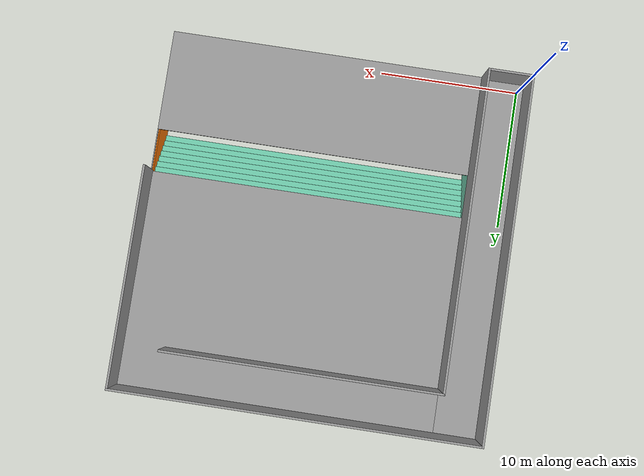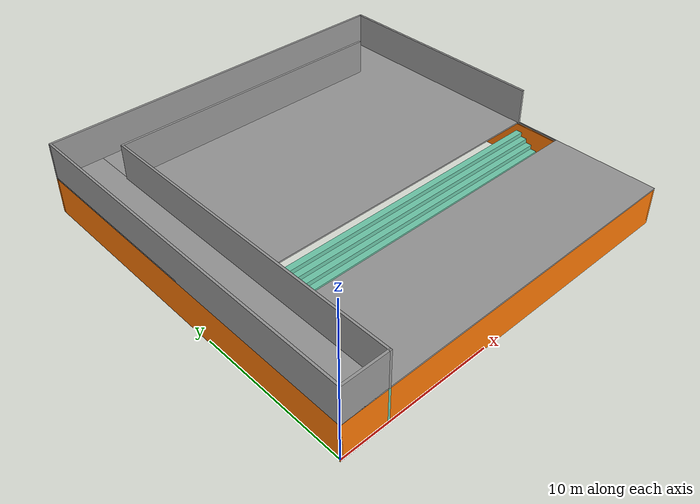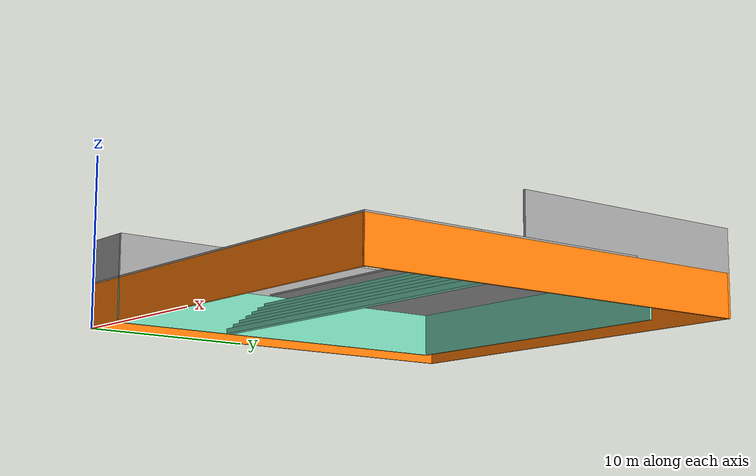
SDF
<?xml version='1.0'?>
<sdf version='1.7'>
  <model name='smart_house'>
    <pose>12.5 12.5 0 0 -0 0</pose>
    <link name='Floor_3'>
      <pose>0 0 2.5 0 -0 0</pose>
      <visual name='Floor_3_Visual_0'>
        <pose>-11.0375 0 0.05 0 -0 0</pose>
        <geometry>
          <box>
            <size>3.075 25.15 0.1</size>
          </box>
        </geometry>
        <material>
          <script>
            <uri>file://media/materials/scripts/gazebo.material</uri>
            <name>Gazebo/Grey</name>
          </script>
          <ambient>1 1 1 1</ambient>
        </material>
        <meta>
          <layer>1</layer>
        </meta>
      </visual>
      <collision name='Floor_3_Collision_0'>
        <geometry>
          <box>
            <size>3.075 25.15 0.1</size>
          </box>
        </geometry>
        <pose>-11.0375 0 0.05 0 -0 0</pose>
      </collision>
      <visual name='Floor_3_Visual_1'>
        <pose>1.5375 -9.0375 0.05 0 -0 0</pose>
        <geometry>
          <box>
            <size>22.075 7.075 0.1</size>
          </box>
        </geometry>
        <material>
          <script>
            <uri>file://media/materials/scripts/gazebo.material</uri>
            <name>Gazebo/Grey</name>
          </script>
          <ambient>1 1 1 1</ambient>
        </material>
        <meta>
          <layer>1</layer>
        </meta>
      </visual>
      <collision name='Floor_3_Collision_1'>
        <geometry>
          <box>
            <size>22.075 7.075 0.1</size>
          </box>
        </geometry>
        <pose>1.5375 -9.0375 0.05 0 -0 0</pose>
      </collision>
      <visual name='Floor_3_Visual_2'>
        <pose>12.5375 3.5375 0.05 0 -0 0</pose>
        <geometry>
          <box>
            <size>0.075 18.075 0.1</size>
          </box>
        </geometry>
        <material>
          <script>
            <uri>file://media/materials/scripts/gazebo.material</uri>
            <name>Gazebo/Grey</name>
          </script>
          <ambient>1 1 1 1</ambient>
        </material>
        <meta>
          <layer>1</layer>
        </meta>
      </visual>
      <collision name='Floor_3_Collision_2'>
        <geometry>
          <box>
            <size>0.075 18.075 0.1</size>
          </box>
        </geometry>
        <pose>12.5375 3.5375 0.05 0 -0 0</pose>
      </collision>
      <visual name='Floor_3_Visual_3'>
        <pose>1.5 5.0375 0.05 0 -0 0</pose>
        <geometry>
          <box>
            <size>22 15.075 0.1</size>
          </box>
        </geometry>
        <material>
          <script>
            <uri>file://media/materials/scripts/gazebo.material</uri>
            <name>Gazebo/Grey</name>
          </script>
          <ambient>1 1 1 1</ambient>
        </material>
        <meta>
          <layer>1</layer>
        </meta>
      </visual>
      <collision name='Floor_3_Collision_3'>
        <geometry>
          <box>
            <size>22 15.075 0.1</size>
          </box>
        </geometry>
        <pose>1.5 5.0375 0.05 0 -0 0</pose>
      </collision>
    </link>
    <link name='Stairs_1'>
      <visual name='Stairs_1_Visual_0'>
        <pose>1.5 -5.28571 0.142857 0 0 -3.14159</pose>
        <geometry>
          <box>
            <size>22 0.428571 0.285714</size>
          </box>
        </geometry>
        <material>
          <script>
            <uri>file://media/materials/scripts/gazebo.material</uri>
            <name>Gazebo/Grey</name>
          </script>
          <ambient>0.435294 0.796078 0.67451 1</ambient>
        </material>
        <meta>
          <layer>0</layer>
        </meta>
      </visual>
      <collision name='Stairs_1_Collision_0'>
        <geometry>
          <box>
            <size>22 0.428571 0.285714</size>
          </box>
        </geometry>
        <pose>1.5 -5.28571 0.142857 0 0 -3.14159</pose>
      </collision>
      <visual name='Stairs_1_Visual_1'>
        <pose>1.5 -4.85714 0.428571 0 0 -3.14159</pose>
        <geometry>
          <box>
            <size>22 0.428571 0.285714</size>
          </box>
        </geometry>
        <material>
          <script>
            <uri>file://media/materials/scripts/gazebo.material</uri>
            <name>Gazebo/Grey</name>
          </script>
          <ambient>0.435294 0.796078 0.67451 1</ambient>
        </material>
        <meta>
          <layer>0</layer>
        </meta>
      </visual>
      <collision name='Stairs_1_Collision_1'>
        <geometry>
          <box>
            <size>22 0.428571 0.285714</size>
          </box>
        </geometry>
        <pose>1.5 -4.85714 0.428571 0 0 -3.14159</pose>
      </collision>
      <visual name='Stairs_1_Visual_2'>
        <pose>1.5 -4.42857 0.714286 0 0 -3.14159</pose>
        <geometry>
          <box>
            <size>22 0.428571 0.285714</size>
          </box>
        </geometry>
        <material>
          <script>
            <uri>file://media/materials/scripts/gazebo.material</uri>
            <name>Gazebo/Grey</name>
          </script>
          <ambient>0.435294 0.796078 0.67451 1</ambient>
        </material>
        <meta>
          <layer>0</layer>
        </meta>
      </visual>
      <collision name='Stairs_1_Collision_2'>
        <geometry>
          <box>
            <size>22 0.428571 0.285714</size>
          </box>
        </geometry>
        <pose>1.5 -4.42857 0.714286 0 0 -3.14159</pose>
      </collision>
      <visual name='Stairs_1_Visual_3'>
        <pose>1.5 -4 1 0 0 -3.14159</pose>
        <geometry>
          <box>
            <size>22 0.428571 0.285714</size>
          </box>
        </geometry>
        <material>
          <script>
            <uri>file://media/materials/scripts/gazebo.material</uri>
            <name>Gazebo/Grey</name>
          </script>
          <ambient>0.435294 0.796078 0.67451 1</ambient>
        </material>
        <meta>
          <layer>0</layer>
        </meta>
      </visual>
      <collision name='Stairs_1_Collision_3'>
        <geometry>
          <box>
            <size>22 0.428571 0.285714</size>
          </box>
        </geometry>
        <pose>1.5 -4 1 0 0 -3.14159</pose>
      </collision>
      <visual name='Stairs_1_Visual_4'>
        <pose>1.5 -3.57143 1.28571 0 0 -3.14159</pose>
        <geometry>
          <box>
            <size>22 0.428571 0.285714</size>
          </box>
        </geometry>
        <material>
          <script>
            <uri>file://media/materials/scripts/gazebo.material</uri>
            <name>Gazebo/Grey</name>
          </script>
          <ambient>0.435294 0.796078 0.67451 1</ambient>
        </material>
        <meta>
          <layer>0</layer>
        </meta>
      </visual>
      <collision name='Stairs_1_Collision_4'>
        <geometry>
          <box>
            <size>22 0.428571 0.285714</size>
          </box>
        </geometry>
        <pose>1.5 -3.57143 1.28571 0 0 -3.14159</pose>
      </collision>
      <visual name='Stairs_1_Visual_5'>
        <pose>1.5 -3.14286 1.57143 0 0 -3.14159</pose>
        <geometry>
          <box>
            <size>22 0.428571 0.285714</size>
          </box>
        </geometry>
        <material>
          <script>
            <uri>file://media/materials/scripts/gazebo.material</uri>
            <name>Gazebo/Grey</name>
          </script>
          <ambient>0.435294 0.796078 0.67451 1</ambient>
        </material>
        <meta>
          <layer>0</layer>
        </meta>
      </visual>
      <collision name='Stairs_1_Collision_5'>
        <geometry>
          <box>
            <size>22 0.428571 0.285714</size>
          </box>
        </geometry>
        <pose>1.5 -3.14286 1.57143 0 0 -3.14159</pose>
      </collision>
      <visual name='Stairs_1_Visual_6'>
        <pose>1.5 -2.71428 1.85714 0 0 -3.14159</pose>
        <geometry>
          <box>
            <size>22 0.428571 0.285714</size>
          </box>
        </geometry>
        <material>
          <script>
            <uri>file://media/materials/scripts/gazebo.material</uri>
            <name>Gazebo/Grey</name>
          </script>
          <ambient>0.435294 0.796078 0.67451 1</ambient>
        </material>
        <meta>
          <layer>0</layer>
        </meta>
      </visual>
      <collision name='Stairs_1_Collision_6'>
        <geometry>
          <box>
            <size>22 0.428571 0.285714</size>
          </box>
        </geometry>
        <pose>1.5 -2.71428 1.85714 0 0 -3.14159</pose>
      </collision>
    </link>
    <link name='Wall_0'>
      <collision name='Wall_0_Collision'>
        <geometry>
          <box>
            <size>25.15 0.15 2.5</size>
          </box>
        </geometry>
        <pose>0 0 1.25 0 -0 0</pose>
      </collision>
      <visual name='Wall_0_Visual'>
        <pose>0 0 1.25 0 -0 0</pose>
        <geometry>
          <box>
            <size>25.15 0.15 2.5</size>
          </box>
        </geometry>
        <material>
          <script>
            <uri>file://media/materials/scripts/gazebo.material</uri>
            <name>Gazebo/Grey</name>
          </script>
          <ambient>0.996078 0.47451 0.0196078 1</ambient>
        </material>
        <meta>
          <layer>0</layer>
        </meta>
      </visual>
      <pose>0 -12.5 0 0 -0 0</pose>
    </link>
    <link name='Wall_1'>
      <collision name='Wall_1_Collision'>
        <geometry>
          <box>
            <size>25.15 0.15 2.5</size>
          </box>
        </geometry>
        <pose>0 0 1.25 0 -0 0</pose>
      </collision>
      <visual name='Wall_1_Visual'>
        <pose>0 0 1.25 0 -0 0</pose>
        <geometry>
          <box>
            <size>25.15 0.15 2.5</size>
          </box>
        </geometry>
        <material>
          <script>
            <uri>file://media/materials/scripts/gazebo.material</uri>
            <name>Gazebo/Grey</name>
          </script>
          <ambient>0.996078 0.47451 0.0196078 1</ambient>
        </material>
        <meta>
          <layer>0</layer>
        </meta>
      </visual>
      <pose>12.5 0 0 0 -0 1.5708</pose>
    </link>
    <link name='Wall_13'>
      <collision name='Wall_13_Collision'>
        <geometry>
          <box>
            <size>22.15 0.15 2.5</size>
          </box>
        </geometry>
        <pose>0 0 1.25 0 -0 0</pose>
      </collision>
      <visual name='Wall_13_Visual'>
        <pose>0 0 1.25 0 -0 0</pose>
        <geometry>
          <box>
            <size>22.15 0.15 2.5</size>
          </box>
        </geometry>
        <material>
          <script>
            <uri>file://media/materials/scripts/gazebo.material</uri>
            <name>Gazebo/Grey</name>
          </script>
          <ambient>0.435294 0.796078 0.67451 1</ambient>
        </material>
        <meta>
          <layer>0</layer>
        </meta>
      </visual>
      <pose>-9.5 -1.5 0 0 -0 1.5708</pose>
    </link>
    <link name='Wall_14'>
      <collision name='Wall_14_Collision'>
        <geometry>
          <box>
            <size>19.15 0.15 2.5</size>
          </box>
        </geometry>
        <pose>0 0 1.25 0 -0 0</pose>
      </collision>
      <visual name='Wall_14_Visual'>
        <pose>0 0 1.25 0 -0 0</pose>
        <geometry>
          <box>
            <size>19.15 0.15 2.5</size>
          </box>
        </geometry>
        <material>
          <script>
            <uri>file://media/materials/scripts/gazebo.material</uri>
            <name>Gazebo/Grey</name>
          </script>
          <ambient>0.435294 0.796078 0.67451 1</ambient>
        </material>
        <meta>
          <layer>0</layer>
        </meta>
      </visual>
      <pose>0 9.5 0 0 -0 0</pose>
    </link>
    <link name='Wall_2'>
      <collision name='Wall_2_Collision'>
        <geometry>
          <box>
            <size>25.15 0.15 2.5</size>
          </box>
        </geometry>
        <pose>0 0 1.25 0 -0 0</pose>
      </collision>
      <visual name='Wall_2_Visual'>
        <pose>0 0 1.25 0 -0 0</pose>
        <geometry>
          <box>
            <size>25.15 0.15 2.5</size>
          </box>
        </geometry>
        <material>
          <script>
            <uri>file://media/materials/scripts/gazebo.material</uri>
            <name>Gazebo/Grey</name>
          </script>
          <ambient>0.996078 0.47451 0.0196078 1</ambient>
        </material>
        <meta>
          <layer>0</layer>
        </meta>
      </visual>
      <pose>0 12.5 0 0 -0 3.14159</pose>
    </link>
    <link name='Wall_24'>
      <collision name='Wall_24_Collision'>
        <geometry>
          <box>
            <size>25.15 0.15 2.5</size>
          </box>
        </geometry>
        <pose>0 0 1.25 0 -0 0</pose>
      </collision>
      <visual name='Wall_24_Visual'>
        <pose>0 0 1.25 0 -0 0</pose>
        <geometry>
          <box>
            <size>25.15 0.15 2.5</size>
          </box>
        </geometry>
        <material>
          <script>
            <uri>file://media/materials/scripts/gazebo.material</uri>
            <name>Gazebo/Grey</name>
          </script>
          <ambient>1 1 1 1</ambient>
        </material>
        <meta>
          <layer>1</layer>
        </meta>
      </visual>
      <pose>0 12.5 2.5 0 -0 3.14159</pose>
    </link>
    <link name='Wall_25'>
      <collision name='Wall_25_Collision'>
        <geometry>
          <box>
            <size>25.15 0.15 2.5</size>
          </box>
        </geometry>
        <pose>0 0 1.25 0 -0 0</pose>
      </collision>
      <visual name='Wall_25_Visual'>
        <pose>0 0 1.25 0 -0 0</pose>
        <geometry>
          <box>
            <size>25.15 0.15 2.5</size>
          </box>
        </geometry>
        <material>
          <script>
            <uri>file://media/materials/scripts/gazebo.material</uri>
            <name>Gazebo/Grey</name>
          </script>
          <ambient>1 1 1 1</ambient>
        </material>
        <meta>
          <layer>1</layer>
        </meta>
      </visual>
      <pose>-12.5 0 2.5 0 -0 -1.5708</pose>
    </link>
    <link name='Wall_26'>
      <collision name='Wall_26_Collision'>
        <geometry>
          <box>
            <size>22.15 0.15 2.5</size>
          </box>
        </geometry>
        <pose>0 0 1.25 0 -0 0</pose>
      </collision>
      <visual name='Wall_26_Visual'>
        <pose>0 0 1.25 0 -0 0</pose>
        <geometry>
          <box>
            <size>22.15 0.15 2.5</size>
          </box>
        </geometry>
        <material>
          <script>
            <uri>file://media/materials/scripts/gazebo.material</uri>
            <name>Gazebo/Grey</name>
          </script>
          <ambient>1 1 1 1</ambient>
        </material>
        <meta>
          <layer>1</layer>
        </meta>
      </visual>
      <pose>-9.5 -1.5 2.5 0 -0 1.5708</pose>
    </link>
    <link name='Wall_27'>
      <collision name='Wall_27_Collision'>
        <geometry>
          <box>
            <size>19.15 0.15 2.5</size>
          </box>
        </geometry>
        <pose>0 0 1.25 0 -0 0</pose>
      </collision>
      <visual name='Wall_27_Visual'>
        <pose>0 0 1.25 0 -0 0</pose>
        <geometry>
          <box>
            <size>19.15 0.15 2.5</size>
          </box>
        </geometry>
        <material>
          <script>
            <uri>file://media/materials/scripts/gazebo.material</uri>
            <name>Gazebo/Grey</name>
          </script>
          <ambient>1 1 1 1</ambient>
        </material>
        <meta>
          <layer>1</layer>
        </meta>
      </visual>
      <pose>0 9.5 2.5 0 -0 0</pose>
    </link>
    <link name='Wall_28'>
      <collision name='Wall_28_Collision'>
        <geometry>
          <box>
            <size>3.15 0.15 2.5</size>
          </box>
        </geometry>
        <pose>0 0 1.25 0 -0 0</pose>
      </collision>
      <visual name='Wall_28_Visual'>
        <pose>0 0 1.25 0 -0 0</pose>
        <geometry>
          <box>
            <size>3.15 0.15 2.5</size>
          </box>
        </geometry>
        <material>
          <script>
            <uri>file://media/materials/scripts/gazebo.material</uri>
            <name>Gazebo/Grey</name>
          </script>
          <ambient>1 1 1 1</ambient>
        </material>
        <meta>
          <layer>1</layer>
        </meta>
      </visual>
      <pose>-11 -12.5 2.5 0 -0 0</pose>
    </link>
    <link name='Wall_3'>
      <collision name='Wall_3_Collision'>
        <geometry>
          <box>
            <size>25.15 0.15 2.5</size>
          </box>
        </geometry>
        <pose>0 0 1.25 0 -0 0</pose>
      </collision>
      <visual name='Wall_3_Visual'>
        <pose>0 0 1.25 0 -0 0</pose>
        <geometry>
          <box>
            <size>25.15 0.15 2.5</size>
          </box>
        </geometry>
        <material>
          <script>
            <uri>file://media/materials/scripts/gazebo.material</uri>
            <name>Gazebo/Grey</name>
          </script>
          <ambient>0.996078 0.47451 0.0196078 1</ambient>
        </material>
        <meta>
          <layer>0</layer>
        </meta>
      </visual>
      <pose>-12.5 0 0 0 -0 -1.5708</pose>
    </link>
    <link name='Wall_30'>
      <collision name='Wall_30_Collision'>
        <geometry>
          <box>
            <size>15.15 0.15 2.5</size>
          </box>
        </geometry>
        <pose>0 0 1.25 0 -0 0</pose>
      </collision>
      <visual name='Wall_30_Visual'>
        <pose>0 0 1.25 0 -0 0</pose>
        <geometry>
          <box>
            <size>15.15 0.15 2.5</size>
          </box>
        </geometry>
        <material>
          <script>
            <uri>file://media/materials/scripts/gazebo.material</uri>
            <name>Gazebo/Grey</name>
          </script>
          <ambient>1 1 1 1</ambient>
        </material>
        <meta>
          <layer>1</layer>
        </meta>
      </visual>
      <pose>12.5 5 2.5 0 -0 -1.5708</pose>
    </link>
    <static>1</static>
  </model>
</sdf>
